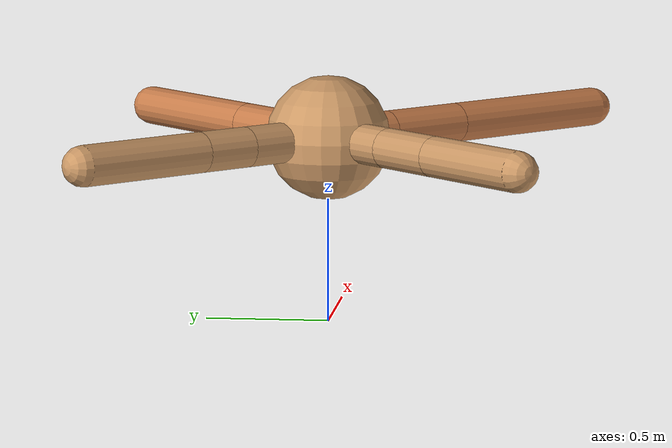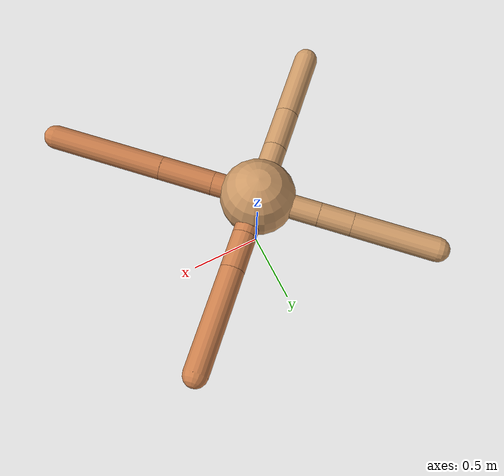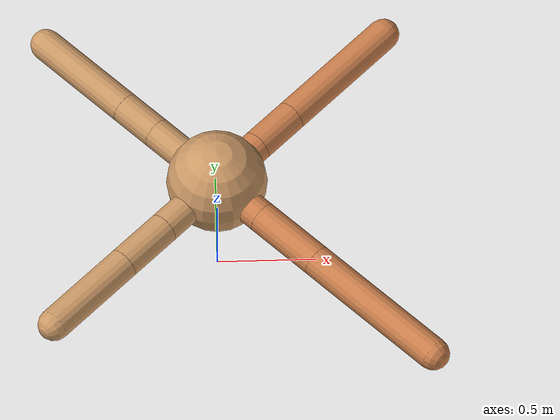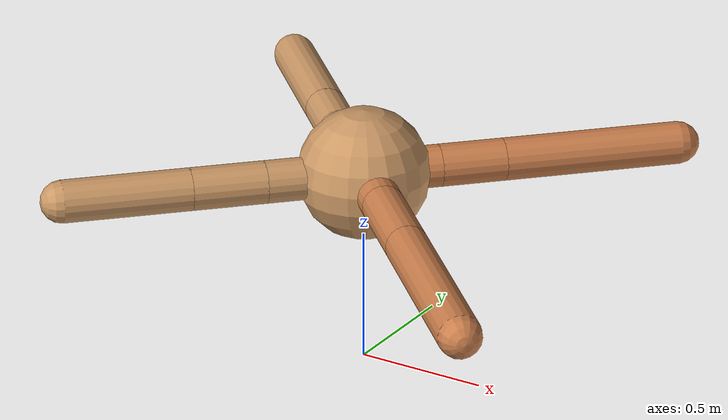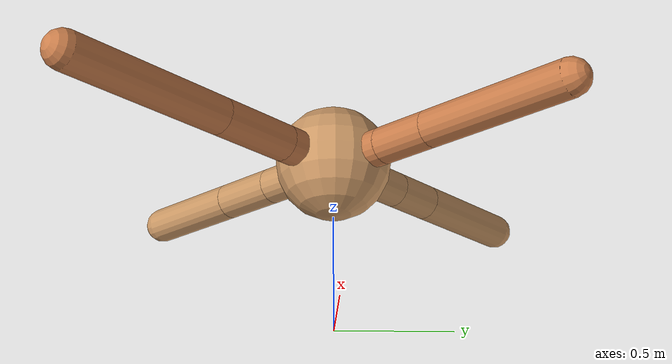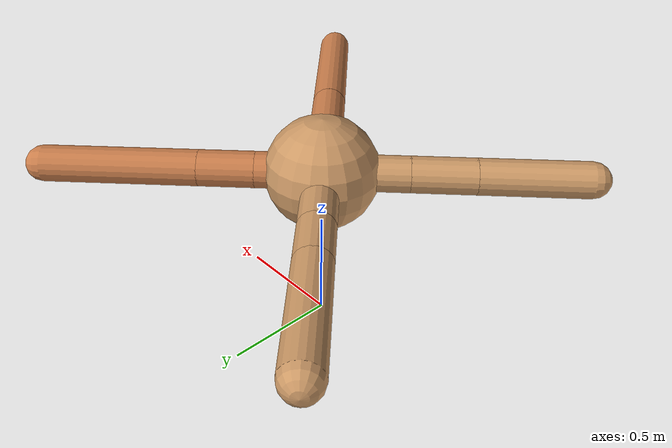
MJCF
<mujoco model="ant">
  <compiler angle="degree" coordinate="local" inertiafromgeom="true" />
  <option integrator="RK4" timestep="0.01" />
  <custom>
    <numeric data="0.0 0.0 0.55 1.0 0.0 0.0 0.0 0.0 1.0 0.0 -1.0 0.0 -1.0 0.0 1.0" name="init_qpos" />
  </custom>
  <default>
    <joint armature="1" damping="1" limited="true" />
    <geom conaffinity="0" condim="3" density="5.0" friction="1.5 0.1 0.1" margin="0.01" rgba="0.8 0.6 0.4 1" />
  </default>
  <worldbody>
    <body name="torso" pos="0 0 0.75">
      <geom name="torso_geom" pos="0 0 0" size="0.25" type="sphere" />

      <body name="front_left_leg" pos="0 0 0">
        <geom fromto="0.0 0.0 0.0 0.20321210160743944 0.20321210160743944 0.0" name="aux_1_geom" size="0.08" type="capsule" rgba=".8 .5 .3 1" />
        <body name="aux_1" pos="0.20321210160743944 0.20321210160743944 0.0">
          <joint axis="0 0 1" name="hip_1" pos="0.0 0.0 0.0" range="-40 40" type="hinge" />
          <geom fromto="0.0 0.0 0.0 0.17362515357541422 0.17362515357541422 0.0" name="left_leg_geom" size="0.08" type="capsule" rgba=".8 .5 .3 1" />
          <body pos="0.17362515357541422 0.17362515357541422 0.0" name="front_left_foot">
            <joint axis="-1 1 0" name="ankle_1" pos="0.0 0.0 0.0" range="30 100" type="hinge" />
            <geom fromto="0.0 0.0 0.0 0.48024134324972584 0.48024134324972584 0.0" name="left_ankle_geom" size="0.08" type="capsule" rgba=".8 .5 .3 1" />
          </body>
        </body>
      </body>
      <body name="front_right_leg" pos="0 0 0">
        <geom fromto="0.0 0.0 0.0 -0.2916267797172159 0.2916267797172159 0.0" name="aux_2_geom" size="0.08" type="capsule" />
        <body name="aux_2" pos="-0.2916267797172159 0.2916267797172159 0.0">
          <joint axis="0 0 1" name="hip_2" pos="0.0 0.0 0.0" range="-40 40" type="hinge" />
          <geom fromto="0.0 0.0 0.0 -0.15507708856559194 0.15507708856559194 0.0" name="right_leg_geom" size="0.08" type="capsule" />
          <body pos="-0.15507708856559194 0.15507708856559194 0.0" name="front_right_foot">
            <joint axis="1 1 0" name="ankle_2" pos="0.0 0.0 0.0" range="-100 -30" type="hinge" />
            <geom fromto="0.0 0.0 0.0 -0.39063136764482265 0.39063136764482265 0.0" name="right_ankle_geom" size="0.08" type="capsule" />
          </body>
        </body>
      </body>
      <body name="left_back_leg" pos="0 0 0">
        <geom fromto="0.0 0.0 0.0 -0.2651327216979422 -0.2651327216979422 0.0" name="aux_3_geom" size="0.08" type="capsule" />
        <body name="aux_3" pos="-0.2651327216979422 -0.2651327216979422 0.0">
          <joint axis="0 0 1" name="hip_3" pos="0.0 0.0 0.0" range="-40 40" type="hinge" />
          <geom fromto="0.0 0.0 0.0 -0.19825019855432907 -0.19825019855432907 0.0" name="back_leg_geom" size="0.08" type="capsule" />
          <body pos="-0.19825019855432907 -0.19825019855432907 0.0" name="left_back_foot">
            <joint axis="-1 1 0" name="ankle_3" pos="0.0 0.0 0.0" range="-100 -30" type="hinge" />
            <geom fromto="0.0 0.0 0.0 -0.339864071114657 -0.339864071114657 0.0" name="third_ankle_geom" size="0.08" type="capsule" />
          </body>
        </body>
      </body>
      <body name="right_back_leg" pos="0 0 0">
        <geom fromto="0.0 0.0 0.0 0.21714852470971976 -0.21714852470971976 0.0" name="aux_4_geom" size="0.08" type="capsule" rgba=".8 .5 .3 1" />
        <body name="aux_4" pos="0.21714852470971976 -0.21714852470971976 0.0">
          <joint axis="0 0 1" name="hip_4" pos="0.0 0.0 0.0" range="-40 40" type="hinge" />
          <geom fromto="0.0 0.0 0.0 0.25617672170091504 -0.25617672170091504 0.0" name="rightback_leg_geom" size="0.08" type="capsule" rgba=".8 .5 .3 1" />
          <body pos="0.25617672170091504 -0.25617672170091504 0.0" name="right_back_foot">
            <joint axis="1 1 0" name="ankle_4" pos="0.0 0.0 0.0" range="30 100" type="hinge" />
            <geom fromto="0.0 0.0 0.0 0.5407659661121338 -0.5407659661121338 0.0" name="fourth_ankle_geom" size="0.08" type="capsule" rgba=".8 .5 .3 1" />
          </body>
        </body>
      </body>
    </body>
  </worldbody>
  <actuator>
    <motor ctrllimited="true" ctrlrange="-1.0 1.0" joint="hip_4" gear="150" />
    <motor ctrllimited="true" ctrlrange="-1.0 1.0" joint="ankle_4" gear="150" />
    <motor ctrllimited="true" ctrlrange="-1.0 1.0" joint="hip_1" gear="150" />
    <motor ctrllimited="true" ctrlrange="-1.0 1.0" joint="ankle_1" gear="150" />
    <motor ctrllimited="true" ctrlrange="-1.0 1.0" joint="hip_2" gear="150" />
    <motor ctrllimited="true" ctrlrange="-1.0 1.0" joint="ankle_2" gear="150" />
    <motor ctrllimited="true" ctrlrange="-1.0 1.0" joint="hip_3" gear="150" />
    <motor ctrllimited="true" ctrlrange="-1.0 1.0" joint="ankle_3" gear="150" />
  </actuator>
</mujoco>
